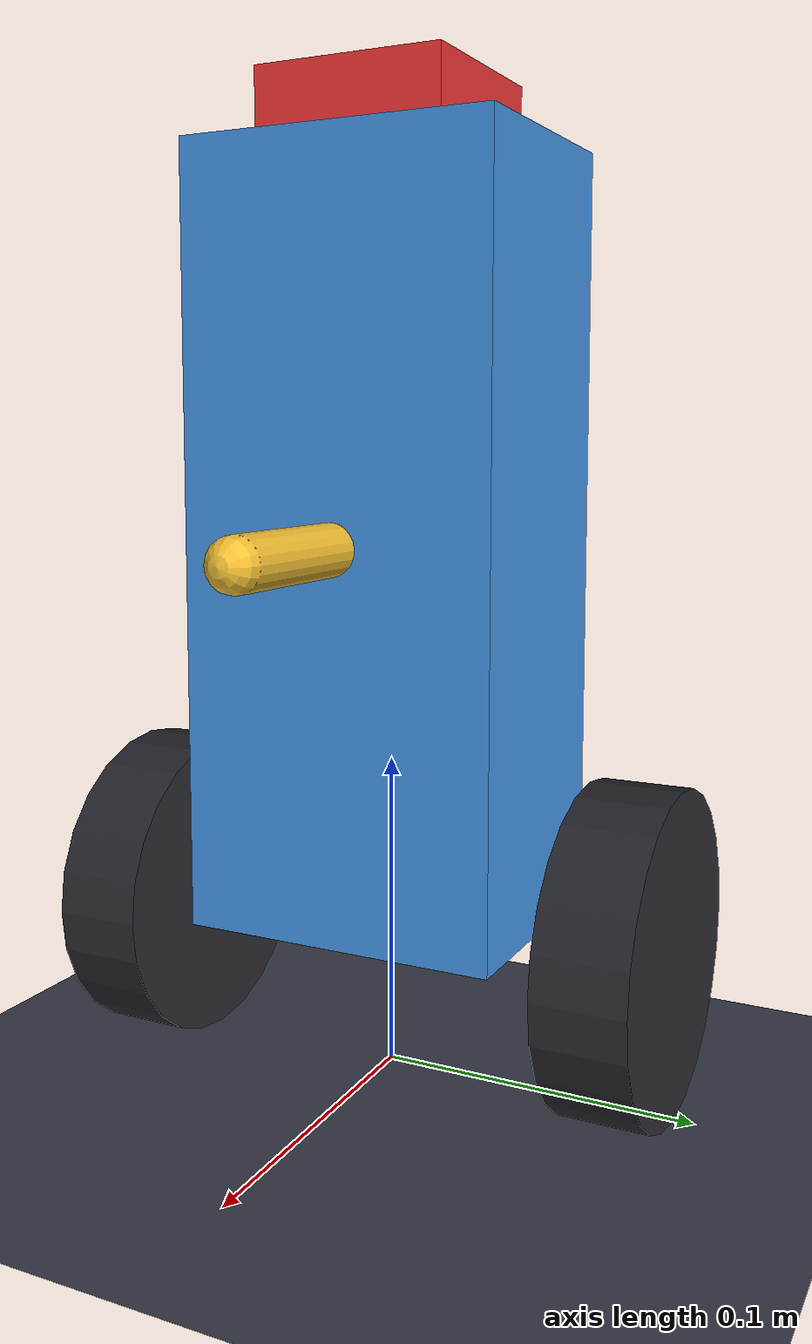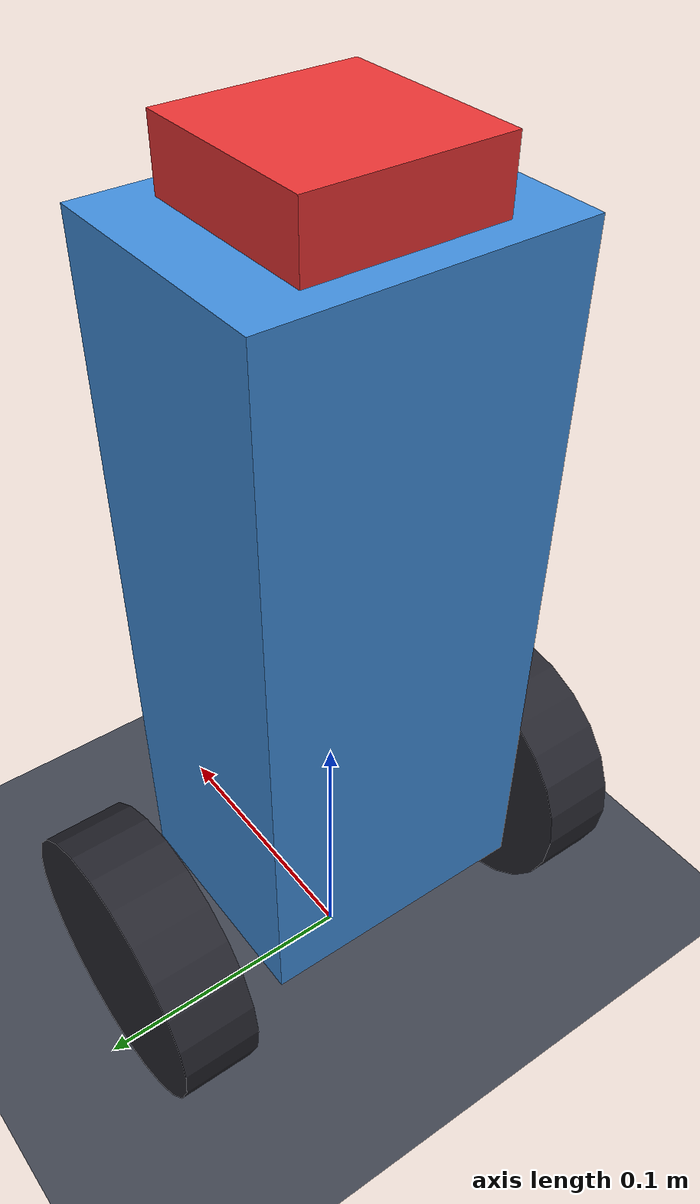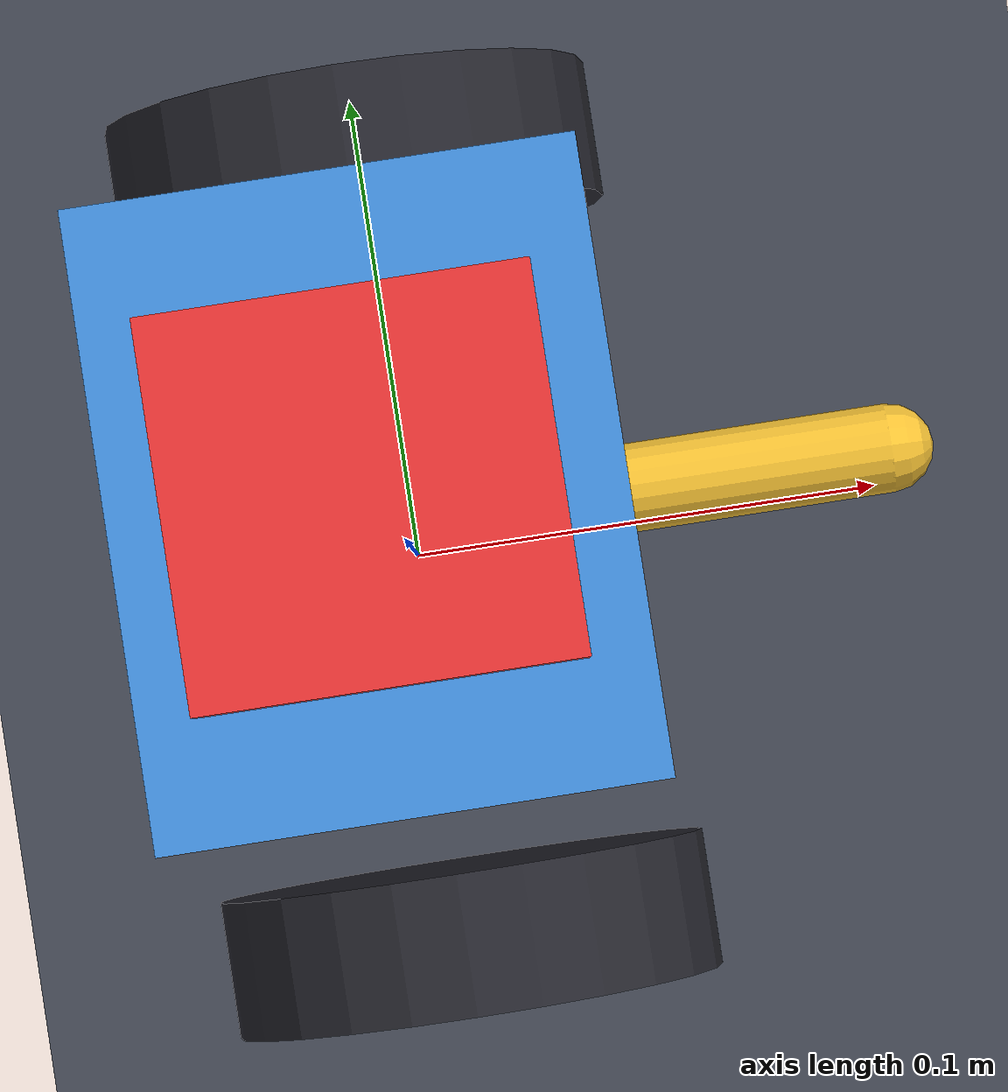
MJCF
<mujoco model="balance_bot">
  <compiler angle="radian" autolimits="true" balanceinertia="true"/>
  <option timestep="0.0025" integrator="Euler" gravity="0 0 -9.81"
          cone="elliptic" impratio="10"/>

  <default>
    <geom friction="0.90 0.005 0.0001" solref="0.020 1" solimp="0.95 0.99 0.001"/>
    <joint damping="0"/>
  </default>

  <!-- The offscreen framebuffer defaults to 640x480, which silently caps
       mujoco.Renderer.  The in-window 3D view asks for more than that. -->
  <visual>
    <global offwidth="1920" offheight="1080"/>
    <quality shadowsize="2048" offsamples="4"/>
    <map znear="0.01" zfar="30"/>
  </visual>

  <asset>
    <texture name="sky" type="skybox" builtin="gradient" width="256" height="256"
             rgb1="0.29 0.33 0.42" rgb2="0.08 0.09 0.12"/>
    <texture name="grid" type="2d" builtin="checker" width="512" height="512"
             rgb1="0.22 0.24 0.28" rgb2="0.28 0.30 0.35"/>
    <material name="grid" texture="grid" texrepeat="12 12" reflectance="0.05"/>
  </asset>

  <worldbody>
    <light pos="0 0 4" dir="0 0 -1" diffuse="0.9 0.9 0.9"/>
    <light pos="3 -3 3" dir="-0.5 0.5 -0.6" diffuse="0.35 0.35 0.4"/>
    <geom name="floor" type="plane" size="0 0 0.05" material="grid"
          friction="0.90 0.005 0.0001"/>

    <body name="chassis" pos="0 0 0.0500">
      <freejoint name="root"/>
      <inertial pos="0 0 0.1200" mass="1.5000"
                diaginertia="0.008000 0.008000 0.008595"/>
      <geom name="body" type="box"
            pos="0 0 0.1200"
            size="0.0400 0.0500 0.1200"
            rgba="0.25 0.55 0.85 1" mass="0" contype="1" conaffinity="1"/>
      <geom name="nose" type="capsule" fromto="0 0 0.1200 0.0900 0 0.1200"
            size="0.008" rgba="0.95 0.75 0.2 1" mass="0" contype="0" conaffinity="0"/>
      <site name="imu" pos="0 0 0.1200" size="0.006"/>

      <body name="payload_body" pos="0 0 0.2400">
        <geom name="payload_geom" type="box" size="0.0300 0.0300 0.0200"
              rgba="0.9 0.2 0.2 1" mass="0" contype="0" conaffinity="0"/>
      </body>

      <body name="wheel_l" pos="0 0.0800 0">
        <joint name="jw_l" type="hinge" axis="0 1 0" armature="0"/>
        <inertial pos="0 0 0" mass="0.1000"
                  diaginertia="0.000063 0.000125 0.000063"/>
        <geom name="gw_l" type="cylinder" size="0.0500 0.0140"
              quat="0.7071068 0.7071068 0 0" rgba="0.15 0.15 0.18 1" mass="0"/>
      </body>

      <body name="wheel_r" pos="0 -0.0800 0">
        <joint name="jw_r" type="hinge" axis="0 1 0" armature="0"/>
        <inertial pos="0 0 0" mass="0.1000"
                  diaginertia="0.000063 0.000125 0.000063"/>
        <geom name="gw_r" type="cylinder" size="0.0500 0.0140"
              quat="0.7071068 0.7071068 0 0" rgba="0.15 0.15 0.18 1" mass="0"/>
      </body>
    </body>
  </worldbody>

  <actuator>
    <motor name="m_l" joint="jw_l" gear="1"
           ctrlrange="-0.6000 0.6000"/>
    <motor name="m_r" joint="jw_r" gear="1"
           ctrlrange="-0.6000 0.6000"/>
  </actuator>

  <sensor>
    <framequat name="s_quat" objtype="site" objname="imu"/>
    <gyro name="s_gyro" site="imu"/>
    <accelerometer name="s_acc" site="imu"/>
    <framelinvel name="s_vel" objtype="body" objname="chassis"/>
    <jointvel name="s_wl" joint="jw_l"/>
    <jointvel name="s_wr" joint="jw_r"/>
  </sensor>
</mujoco>
